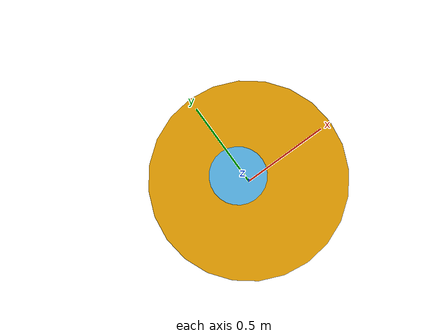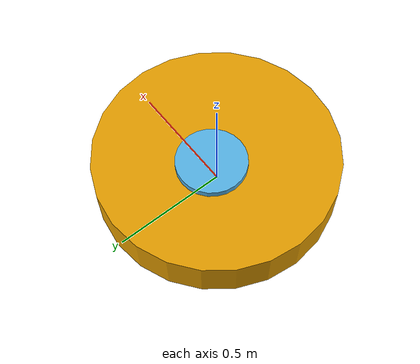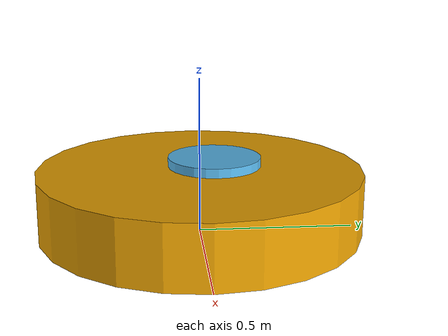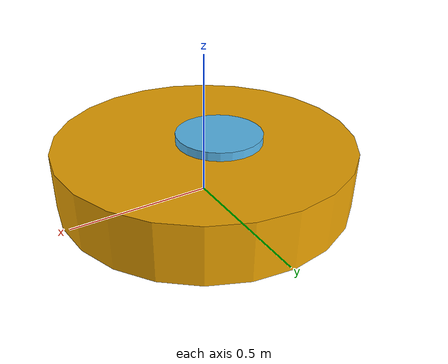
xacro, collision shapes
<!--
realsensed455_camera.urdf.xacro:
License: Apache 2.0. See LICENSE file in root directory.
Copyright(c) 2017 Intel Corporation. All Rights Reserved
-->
<?xml version="1.0"?>

<robot name="quadrotor" xmlns:xacro="http://ros.org/wiki/xacro">
  <xacro:property name="mass" value="1.2" />
  <xacro:property name="ixx" value="0.004" />
  <xacro:property name="iyy" value="0.004" />
  <xacro:property name="izz" value="0.00496" />
  <xacro:property name="M_PI" value="3.1415926535897931" />

  <xacro:arg name="robot_ns" default="falcon4"/>
  <xacro:arg name="frame_prefix" default="" />
  <xacro:arg name="use_nominal_extrinsics" default="true"/>

  <!-- Main quadrotor link -->
  <xacro:macro name="quadrotor_base_macro" params="frame_prefix">
    <link name="base_link">
      <inertial>
        <mass value="${mass}"/>
        <origin xyz="0 0 0.12" />
        <inertia ixx="${ixx}" ixy="0.0" ixz="0.0" iyy="${iyy}" iyz="0.0" izz="${izz}" />
      </inertial>
      <visual>
        <origin xyz="0 0 0.05" rpy="0 0 -${M_PI/2}" />
        <geometry>
          <mesh filename="package://aizo_models/models/falcon4/falcon4.dae"/>
          <!--cylinder radius="0.05" length="0.01"/-->
        </geometry>
      </visual>
      <collision>
        <origin xyz="0 0 0.11" rpy="0 0 0" />
        <geometry>
          <cylinder radius="0.52" length="0.2"/>
        </geometry>
      </collision>
    </link>

    <joint name="joint_name" type="fixed">
      <parent link="base_link"/>
      <child link="jetson_agx"/>
      <origin xyz="0 0 0.1" rpy="0 0 0"/>
      <axis xyz="0 0 1"/>
    </joint>

    <link name="jetson_agx">
      <inertial>
        <mass value="0.6"/>
        <origin xyz="-0.03 0.05 0.065" />
        <inertia ixx="${ixx}" ixy="0.0" ixz="0.0" iyy="${iyy}" iyz="0.0" izz="${izz}" />
      </inertial>
      <visual>
        <origin xyz="-0.03 0.05 0.065" rpy="0 0 -${M_PI/2}" />
        <geometry>
          <mesh filename="package://aizo_models/models/jetson_agx/agx.dae" scale="0.001 0.001 0.001"/>
        </geometry>
      </visual>
      <collision>
        <origin xyz="-0.03 0.05 0.065" rpy="0 0 0" />
        <geometry>
          <cylinder radius="0.15" length="0.15"/>
        </geometry>
      </collision>
    </link>

    <!-- Realme D455 camera -->
    <xacro:include filename="$(find aizo_simulator_description)/urdf/sensors/realsensed455_camera.urdf.xacro" />
    <xacro:realsense_camera use_nominal_extrinsics="$(arg use_nominal_extrinsics)" parent="base_link">
      <origin xyz="0.1 0 0.065" rpy="0 0 0"/>
    </xacro:realsense_camera>

    <!-- OVC3 Right Side Cam -->
    <!-- OVC3 Left Side Cam -->
    <!-- OVC3 -->
    <!-- Downward facing Lidar -->
    <!--Ouster-OS1, hz is frequency, lasers are vertical resolution, samples are horizontal resolution-->

    <!-- Plugins -->
    <gazebo>
      <!-- Quad Dynamics Plugin -->
      <plugin name="quadrotor_propulsion" filename="libmrsl_quadrotor_propulsion.so">
        <command_topic>so3_cmd</command_topic>
        <odom_topic>ground_truth/odom</odom_topic>
      </plugin>

      <!-- Quad Ground Truth Plugin -->
      <plugin name="quadrotor_groundtruth_sim" filename="libgazebo_ros_p3d.so">
        <updateRate>100.0</updateRate>
        <bodyName>base_link</bodyName>
        <topicName>ground_truth/odom</topicName>
        <gaussianNoise>0.0</gaussianNoise>
        <frameName>world</frameName>
      </plugin>
    </gazebo>

    <!-- GPS Sensor -->
  </xacro:macro>

  <xacro:quadrotor_base_macro frame_prefix="$(arg frame_prefix)"/>
</robot>

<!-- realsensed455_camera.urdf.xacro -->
<robot name="sensor_d455"
  xmlns:xacro="http://ros.org/wiki/xacro">
  <xacro:property name="M_PI" value="3.1415926535897931" />

  <!-- Includes -->
  <xacro:include filename="$(find aizo_simulator_description)/urdf/sensors/_materials.urdf.xacro" />

  <xacro:macro name="sensor_d455" params="parent *origin name:=camera use_nominal_extrinsics:=true">
    <xacro:property name="M_PI" value="3.1415926535897931" />

    <!-- The following values are approximate, and the camera node
     publishing TF values with actual calibrated camera extrinsic values -->
    <xacro:property name="d455_cam_depth_to_infra1_offset" value="0.0"/>
    <xacro:property name="d455_cam_depth_to_infra2_offset" value="-0.095"/>
    <xacro:property name="d455_cam_depth_to_color_offset" value="-0.059"/>

    <!-- The following values model the aluminum peripherial case for the
  	d455 camera, with the camera joint represented by the actual
  	peripherial camera tripod mount -->
    <xacro:property name="d455_cam_width" value="0.124"/>
    <xacro:property name="d455_cam_height" value="0.029"/>
    <xacro:property name="d455_cam_depth" value="0.026"/>
    <xacro:property name="d455_cam_mount_from_center_offset" value="0.02"/>
    <!-- glass cover is 0.1 mm inwards from front aluminium plate -->
    <xacro:property name="d455_glass_to_front" value="0.1e-3"/>
    <!-- see datasheet Revision 009, Fig. 4-4 page 68 -->
    <xacro:property name="d455_zero_depth_to_glass" value="4.55e-3"/>
    <!-- convenience precomputation to avoid clutter-->
    <xacro:property name="d455_mesh_x_offset" value="${d455_cam_mount_from_center_offset-d455_glass_to_front-d455_zero_depth_to_glass}"/>

    <!-- The following offset is relative to the physical d455 camera peripherial
  	camera tripod mount -->
    <xacro:property name="d455_cam_depth_px" value="${d455_cam_mount_from_center_offset}"/>
    <xacro:property name="d455_cam_depth_py" value="0.0475"/>
    <xacro:property name="d455_cam_depth_pz" value="${d455_cam_height/2}"/>

    <!-- camera body, with origin at bottom screw mount -->
    <joint name="${name}_joint" type="fixed">
      <xacro:insert_block name="origin" />
      <parent link="${parent}"/>
      <child link="${name}_bottom_screw_frame" />
    </joint>
    <link name="${name}_bottom_screw_frame"/>

    <joint name="${name}_link_joint" type="fixed">
      <origin xyz="${d455_mesh_x_offset} ${d455_cam_depth_py} ${d455_cam_depth_pz}" rpy="0 0 0"/>
      <parent link="${name}_bottom_screw_frame"/>
      <child link="${name}_link" />
    </joint>

    <link name="${name}_link">
      <visual>
        <!-- the mesh origin is at front plate in between the two infrared camera axes -->
        <origin xyz="${d455_zero_depth_to_glass + d455_glass_to_front} ${-d455_cam_depth_py} 0" rpy="${M_PI/2} 0 ${M_PI/2}"/>
        <geometry>
          <mesh filename="package://aizo_models//models/sensors/realsense/d455.stl" scale="0.002 0.002 0.002" />
        </geometry>
        <material name="aluminum"/>
      </visual>
      <collision>
        <origin xyz="${d455_zero_depth_to_glass-d455_cam_depth/2} ${-d455_cam_depth_py} 0" rpy="0 0 0"/>
        <geometry>
          <box size="${d455_cam_depth} ${d455_cam_width} ${d455_cam_height}"/>
        </geometry>
      </collision>
      <inertial>
        <!-- The following are not reliable values, and should not be used for modeling -->
        <mass value="0.072" />
        <origin xyz="0 0 0" />
        <inertia ixx="0.003881243" ixy="0.0" ixz="0.0" iyy="0.000498940" iyz="0.0" izz="0.003879257" />
      </inertial>
    </link>

    <!-- Use the nominal extrinsics between camera frames if the calibrated extrinsics aren't being published. e.g. running the device in simulation  -->
    <xacro:if value="${use_nominal_extrinsics}">
      <!-- camera depth joints and links -->
      <joint name="${name}_depth_joint" type="fixed">
        <origin xyz="0 0 0" rpy="0 0 0"/>
        <parent link="${name}_link"/>
        <child link="${name}_depth_frame" />
      </joint>
      <link name="${name}_depth_frame"/>

      <joint name="${name}_depth_optical_joint" type="fixed">
        <origin xyz="0 0 0" rpy="${-M_PI/2} 0 ${-M_PI/2}" />
        <parent link="${name}_depth_frame" />
        <child link="${name}_depth_optical_frame" />
      </joint>
      <link name="${name}_depth_optical_frame"/>

      <!-- camera left IR joints and links -->
      <joint name="${name}_infra1_joint" type="fixed">
        <origin xyz="0 ${d455_cam_depth_to_infra1_offset} 0" rpy="0 0 0" />
        <parent link="${name}_link" />
        <child link="${name}_infra1_frame" />
      </joint>
      <link name="${name}_infra1_frame"/>

      <joint name="${name}_infra1_optical_joint" type="fixed">
        <origin xyz="0 0 0" rpy="${-M_PI/2} 0 ${-M_PI/2}" />
        <parent link="${name}_infra1_frame" />
        <child link="${name}_infra1_optical_frame" />
      </joint>
      <link name="${name}_infra1_optical_frame"/>

      <!-- camera right IR joints and links -->
      <joint name="${name}_infra2_joint" type="fixed">
        <origin xyz="0 ${d455_cam_depth_to_infra2_offset} 0" rpy="0 0 0" />
        <parent link="${name}_link" />
        <child link="${name}_infra2_frame" />
      </joint>
      <link name="${name}_infra2_frame"/>

      <joint name="${name}_infra2_optical_joint" type="fixed">
        <origin xyz="0 0 0" rpy="${-M_PI/2} 0 ${-M_PI/2}" />
        <parent link="${name}_infra2_frame" />
        <child link="${name}_infra2_optical_frame" />
      </joint>
      <link name="${name}_infra2_optical_frame"/>

      <!-- camera color joints and links -->
      <joint name="${name}_color_joint" type="fixed">
        <origin xyz="0 ${d455_cam_depth_to_color_offset} 0" rpy="0 0 0" />
        <parent link="${name}_link" />
        <child link="${name}_color_frame" />
      </joint>
      <link name="${name}_color_frame"/>

      <joint name="${name}_color_optical_joint" type="fixed">
        <origin xyz="0 0 0" rpy="${-M_PI/2} 0 ${-M_PI/2}" />
        <parent link="${name}_color_frame" />
        <child link="${name}_color_optical_frame" />
      </joint>
      <link name="${name}_color_optical_frame"/>

      <!-- IMU -->
      <!-- see datasheet Revision 009, page 114 -->
      <xacro:property name="d455_imu_px" value="-0.01602"/>
      <xacro:property name="d455_imu_py" value="-0.03022"/>
      <xacro:property name="d455_imu_pz" value="+0.0074"/>

      <link name="${name}_accel_frame" />
      <link name="${name}_accel_optical_frame" />
      <link name="${name}_gyro_frame" />
      <link name="${name}_gyro_optical_frame" />
      <link name="${name}_imu_optical_frame" />

      <joint name="${name}_accel_joint" type="fixed">
        <origin xyz = "${d455_imu_px} ${d455_imu_py} ${d455_imu_pz}" rpy = "0 0 0" />
        <parent link="${name}_link" />
        <child link="${name}_accel_frame" />
      </joint>

      <joint name="${name}_accel_optical_joint" type="fixed">
        <origin xyz = "0 0 0" rpy = "${-M_PI/2} 0 ${-M_PI/2}" />
        <parent link="${name}_accel_frame" />
        <child link="${name}_accel_optical_frame" />
      </joint>

      <joint name="${name}_gyro_joint" type="fixed">
        <origin xyz = "${d455_imu_px} ${d455_imu_py} ${d455_imu_pz}" rpy = "0 0 0" />
        <parent link="${name}_link" />
        <child link="${name}_gyro_frame" />
      </joint>

      <joint name="${name}_gyro_optical_joint" type="fixed">
        <origin xyz = "0 0 0" rpy = "${-M_PI/2} 0 ${-M_PI/2}" />
        <parent link="${name}_gyro_frame" />
        <child link="${name}_gyro_optical_frame" />
      </joint>

      <joint name="${name}_imu_optical_joint" type="fixed">
        <origin xyz = "0 0 0" rpy = "0 0 0" />
        <parent link="${name}_gyro_optical_frame" />
        <child link="${name}_imu_optical_frame" />
      </joint>
    </xacro:if>

  </xacro:macro>

  <xacro:macro name="realsense_camera" params=" parent use_nominal_extrinsics *origin">
    <xacro:sensor_d455 parent="${parent}" use_nominal_extrinsics="${use_nominal_extrinsics}">
      <xacro:insert_block name="origin" />
    </xacro:sensor_d455>

    <gazebo reference="camera_color_frame">
      <sensor type="depth" name="realsense_R200">
        <always_on>true</always_on>
        <visualize>false</visualize>
        <camera>
          <horizontal_fov>1.3439</horizontal_fov>
          <image>
            <width>640</width>
            <height>480</height>
            <format>R8G8B8</format>
          </image>
          <depth_camera></depth_camera>
          <clip>
            <near>0.03</near>
            <far>10.0</far>
          </clip>
        </camera>

        <plugin name="camera_controller" filename="libgazebo_ros_openni_kinect.so">
          <baseline>0.2</baseline>
          <alwaysOn>true</alwaysOn>
          <updateRate>30.0</updateRate>
          <cameraName>camera</cameraName>
          <frameName>camera_color_optical_frame</frameName>
          <imageTopicName>color/image_raw</imageTopicName>
          <depthImageTopicName>depth/image_rect_raw</depthImageTopicName>
          <pointCloudTopicName>depth/points</pointCloudTopicName>
          <cameraInfoTopicName>color/camera_info</cameraInfoTopicName>
          <depthImageCameraInfoTopicName>depth/camera_info</depthImageCameraInfoTopicName>
          <pointCloudCutoff>0.5</pointCloudCutoff>
          <pointCloudCutoffMax>5.0</pointCloudCutoffMax>
          <hackBaseline>0.07</hackBaseline>
          <distortionK1>0.0</distortionK1>
          <distortionK2>0.0</distortionK2>
          <distortionK3>0.0</distortionK3>
          <distortionT1>0.0</distortionT1>
          <distortionT2>0.0</distortionT2>
          <CxPrime>0.0</CxPrime>
          <Cx>0.0</Cx>
          <Cy>0.0</Cy>
          <focalLength>0</focalLength>
          <hackBaseline>0</hackBaseline>
        </plugin>
      </sensor>
    </gazebo>

    <gazebo reference="camera_link">
      <gravity>true</gravity>
      <sensor name="imu_sensor" type="imu">
        <always_on>true</always_on>
        <update_rate>100</update_rate>
        <visualize>true</visualize>
        <plugin filename="libgazebo_ros_imu_sensor.so" name="imu_plugin">
          <topicName>imu/data_raw</topicName>
          <bodyName>camera_link</bodyName>
          <updateRateHZ>10.0</updateRateHZ>
          <gaussianNoise>0.0</gaussianNoise>
          <xyzOffset>0 0 0</xyzOffset>
          <rpyOffset>0 0 0</rpyOffset>
          <frameName>camera_link</frameName>
          <initialOrientationAsReference>false</initialOrientationAsReference>
        </plugin>
        <pose>0 0 0 0 0 0</pose>
      </sensor>
    </gazebo>

  </xacro:macro>
</robot>
